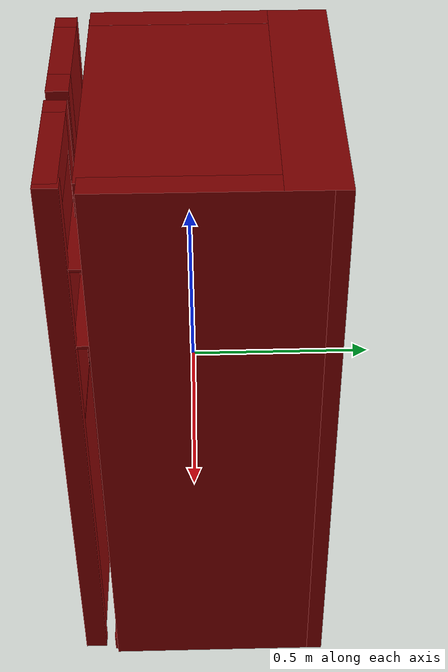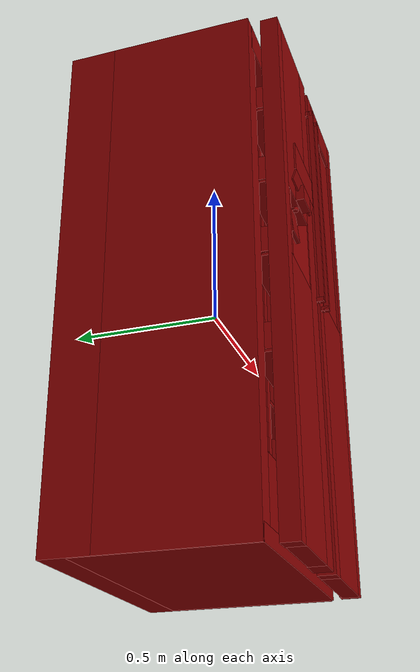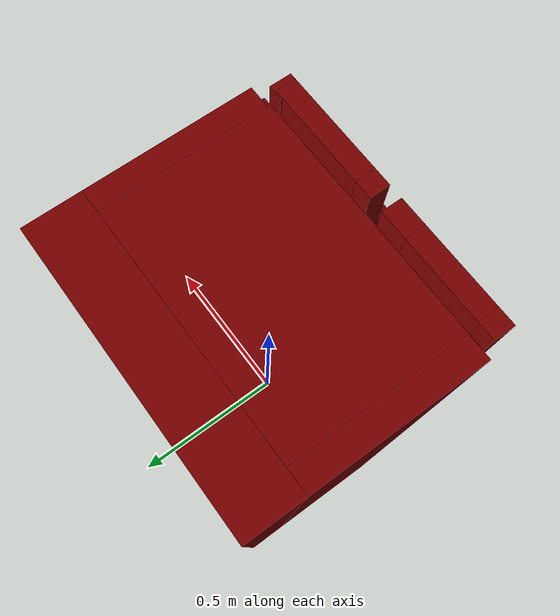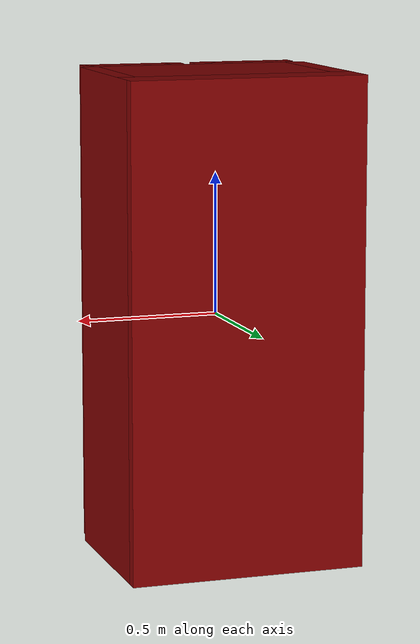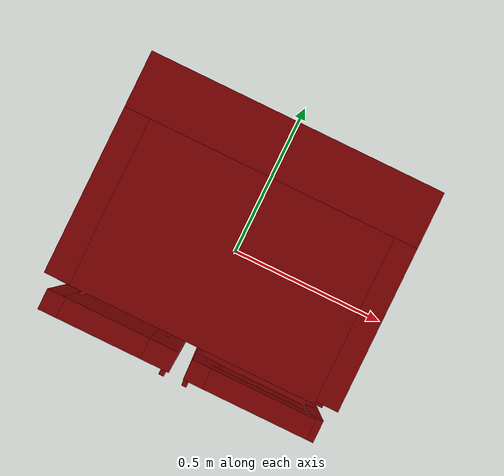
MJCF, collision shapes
<?xml version='1.0' encoding='UTF-8'?>
<mujoco model="model">
  <option timestep="0.002" gravity="0.0 0.0 -9.81"/>
  <compiler angle="radian"/>
  <asset>
    <mesh file="visuals/freezer_door.obj" name="freezer_door_vis"/>
    <mesh file="visuals/freezer_door_Clear.obj" name="freezer_door_Clear_vis"/>
    <mesh file="visuals/freezer_drawer0.obj" name="freezer_drawer0_vis"/>
    <mesh file="visuals/fridge_door.obj" name="fridge_door_vis"/>
    <mesh file="visuals/fridge_door_Clear.obj" name="fridge_door_Clear_vis"/>
    <mesh file="visuals/fridge_drawer0_Clear.obj" name="fridge_drawer0_Clear_vis"/>
    <mesh file="visuals/Body001.obj" name="Body001_vis"/>
    <mesh file="visuals/Body001_Clear.obj" name="Body001_Clear_vis"/>
    <mesh file="visuals/Handle001.obj" name="Handle001_vis"/>
    <texture file="visuals/T_BC001.png" name="Body001_material" type="2d"/>
    <material name="Body001_material" rgba="1 1 1 1.0" texture="Body001_material" shininess="0.4472135901451111" specular="0.41"/>
    <texture file="visuals/T_BC001.png" name="freezer_door_material" type="2d"/>
    <material name="freezer_door_material" rgba="1 1 1 1.0" texture="freezer_door_material" shininess="0.4472135901451111" specular="0.81"/>
    <material name="freezer_door_Clear_material" rgba="0.41474002599716187 0.41474002599716187 0.41474002599716187 0.699999988079071" shininess="0.5" specular="0.3103448502657381"/>
    <texture file="visuals/T_BC001.png" name="Handle001_material" type="2d"/>
    <material name="Handle001_material" rgba="1 1 1 1.0" texture="Handle001_material" shininess="0.4111" specular="1"/>
    <material name="fridge_drawer0_Clear_material" rgba="0.41474002599716187 0.41474002599716187 0.41474002599716187 0.699999988079071" shininess="0.5" specular="0.3103448502657381"/>
    <texture file="visuals/T_BC001.png" name="freezer_drawer0_material" type="2d"/>
    <material name="freezer_drawer0_material" rgba="1 1 1 1.0" texture="freezer_drawer0_material" shininess="0.4472135901451111" specular="0.3103448502657381"/>
    <texture file="visuals/T_BC001.png" name="fridge_door_material" type="2d"/>
    <material name="fridge_door_material" rgba="1 1 1 1.0" texture="fridge_door_material" shininess="0.4472135901451111" specular="0.81"/>
    <material name="fridge_door_Clear_material" rgba="0.41474002599716187 0.41474002599716187 0.41474002599716187 0.699999988079071" shininess="0.5" specular="0.3103448502657381"/>
    <material name="Body001_Clear_material" rgba="0.41474002599716187 0.41474002599716187 0.41474002599716187 0.699999988079071" shininess="0.5" specular="0.3103448502657381"/>
  </asset>
  <default>
    <default class="visual">
      <geom conaffinity="0" contype="0" group="1" type="mesh"/>
    </default>
    <default class="collision">
      <geom group="0" rgba="0.5 0 0 0.5"/>
    </default>
    <default class="spawn">
      <geom group="0" rgba="1 1 1 0.5" contype="0" conaffinity="0"/>
      <site group="0" rgba="1 1 1 0.5"/>
    </default>
    <default class="region">
      <geom group="1" conaffinity="0" contype="0" rgba="0 1 0 0"/>
    </default>
  </default>
  <worldbody>
    <body>
      <body name="object">
        <geom mesh="Body001_vis" type="mesh" solimp="0.998 0.998 0.001" solref="0.001 1" friction="0.95 0.3 0.1" class="visual" material="Body001_material"/>
        <geom class="collision" type="box" pos="-0.3801945149898529 0.03714057803153992 -3.230525180697441e-09" size="0.035735517740249634 0.292684406042099 0.8571875691413879" quat="1.0 0.0 0.0 0.0"/>
        <geom class="collision" type="box" pos="0.38374921679496765 0.040559086948633194 1.0099029168486595e-08" size="0.03218913823366165 0.2892673909664154 0.8571898341178894" quat="1.0 0.0 0.0 0.0"/>
        <geom class="collision" type="box" pos="-1.1801021173596382e-05 0.2952515482902527 -3.2014213502407074e-09" size="0.41595014929771423 0.07927140593528748 0.8571920990943909" quat="1.0 0.0 0.0 0.0"/>
        <geom class="collision" type="box" pos="-0.0012382620479911566 0.016881851479411125 0.8108739852905273" size="0.37610000371932983 0.2735271453857422 0.04620547592639923" quat="1.0 0.0 0.0 0.0"/>
        <geom class="collision" type="box" pos="-0.17440995573997498 0.057972297072410583 0.4543333649635315" size="0.16287076473236084 0.16558177769184113 0.006923758890479803" quat="1.0 0.0 0.0 0.0"/>
        <geom class="collision" type="box" pos="-0.001491114846430719 0.0028999578207731247 -0.04240342974662781" size="0.015597331337630749 0.1761229783296585 0.8143810629844666" quat="1.0 0.0 0.0 0.0"/>
        <geom class="collision" type="box" pos="-0.003516203723847866 0.016881829127669334 -0.8301694989204407" size="0.40684476494789124 0.2735343873500824 0.027140244841575623" quat="1.0 0.0 0.0 0.0"/>
        <geom class="collision" type="box" pos="0.18122144043445587 0.08383700996637344 -0.2676292657852173" size="0.16114282608032227 0.007333500310778618 0.03612767904996872" quat="1.0 0.0 0.0 0.0"/>
        <geom class="collision" type="box" pos="0.3820780813694 -0.03190062940120697 -0.2676292657852173" size="0.003994883969426155 0.11367939412593842 0.036125548183918" quat="1.0 0.0 0.0 0.0"/>
        <geom class="collision" type="box" pos="-0.38217926025390625 -0.03190062940120697 -0.2676292657852173" size="0.00399490213021636 0.11368034034967422 0.0361257866024971" quat="1.0 0.0 0.0 0.0"/>
        <geom class="collision" type="box" pos="0.02233295328915119 -0.03190062940120697 -0.2676292657852173" size="0.003994915634393692 0.11368104070425034 0.03612596169114113" quat="1.0 0.0 0.0 0.0"/>
        <geom class="collision" type="box" pos="-0.3789580166339874 -0.03190062940120697 -0.4345930814743042" size="0.007216035388410091 0.11368198692798615 0.08158448338508606" quat="1.0 0.0 0.0 0.0"/>
        <geom class="collision" type="box" pos="0.3772643804550171 -0.03190062940120697 -0.4304383099079132" size="0.00880821980535984 0.11368293315172195 0.09076222032308578" quat="1.0 0.0 0.0 0.0"/>
        <geom class="collision" type="box" pos="0.1780054271221161 0.057972297072410583 0.4129199683666229" size="0.1668473333120346 0.16559994220733643 0.006924326531589031" quat="1.0 0.0 0.0 0.0"/>
        <geom class="collision" type="box" pos="0.1780054271221161 0.057972297072410583 0.09163431823253632" size="0.16684775054454803 0.16560041904449463 0.006924340967088938" quat="1.0 0.0 0.0 0.0"/>
        <geom class="collision" type="box" pos="-0.17601948976516724 0.057972297072410583 0.12305711209774017" size="0.16684816777706146 0.16560088098049164 0.006924355868250132" quat="1.0 0.0 0.0 0.0"/>
        <geom class="collision" type="box" pos="-0.17601948976516724 0.057972297072410583 -0.19491110742092133" size="0.1668485701084137 0.16560134291648865 0.006924370303750038" quat="1.0 0.0 0.0 0.0"/>
        <geom class="collision" type="box" pos="-0.17601948976516724 0.057972297072410583 -0.5179890990257263" size="0.16684898734092712 0.16560181975364685 0.006924384739249945" quat="1.0 0.0 0.0 0.0"/>
        <geom class="collision" type="box" pos="0.1780054271221161 -0.004818879067897797 -0.30868032574653625" size="0.1668514609336853 0.1656046062707901 0.0069244722835719585" quat="1.0 0.0 0.0 0.0"/>
        <body name="freezer_door">
          <joint axis="0.0 0.0 -1.0" pos="-0.37913239002227783 -0.311129629611969 0.00011271238327026367" limited="true" name="freezer_door_joint" range="0.0 1.5707963267948966" type="hinge" damping="1" frictionloss="1" armature=".01" stiffness="0.05"/>
          <geom mesh="freezer_door_vis" type="mesh" solimp="0.998 0.998 0.001" solref="0.001 1" friction="0.95 0.3 0.1" class="visual" material="freezer_door_material"/>
          <geom class="collision" type="box" pos="-0.3637799322605133 -0.3178723156452179 -4.644957243726822e-06" size="0.026093820109963417 0.02897055819630623 0.8574196100234985" quat="1.0 0.0 0.0 0.0"/>
          <geom class="collision" type="box" pos="-0.058020249009132385 -0.3178723454475403 -4.545247520582052e-06" size="0.040952883660793304 0.028973646461963654 0.8575195670127869" quat="1.0 0.0 0.0 0.0"/>
          <geom class="collision" type="box" pos="-0.201767235994339 -0.31787237524986267 0.5436348915100098" size="0.1416359692811966 0.028973493725061417 0.31372979283332825" quat="1.0 0.0 0.0 0.0"/>
          <geom class="collision" type="box" pos="-0.20176735520362854 -0.3191768527030945 -0.4313064515590668" size="0.1416359394788742 0.027668824419379234 0.4261077046394348" quat="1.0 0.0 0.0 0.0"/>
          <geom class="collision" type="box" pos="-0.21049916744232178 -0.289520263671875 0.12573562562465668" size="0.09687431156635284 0.0026283112820237875 0.15400418639183044" quat="1.0 0.0 0.0 0.0"/>
          <geom class="collision" type="box" pos="-0.10186759382486343 -0.31699565052986145 0.1257355958223343" size="0.008751383051276207 0.025852853432297707 0.1540149748325348" quat="5.978950667895333e-08 -0.9848077297210693 -0.17364826798439026 9.569190950742268e-08"/>
          <geom class="collision" type="box" pos="-0.03354785591363907 -0.3616794943809509 -0.010237783193588257" size="0.007116621360182762 0.011857819743454456 0.007636724505573511" quat="1.0 0.0 0.0 0.0" name="freezer_door_handle_2"/>
          <geom class="collision" type="box" pos="-0.03324173390865326 -0.3616794943809509 0.7223271131515503" size="0.007422801572829485 0.011857821606099606 0.009034658782184124" quat="1.0 0.0 0.0 0.0" name="freezer_door_handle_1"/>
          <geom class="collision" type="box" pos="-0.033224087208509445 -0.36676377058029175 0.35558971762657166" size="0.007440386340022087 0.008210212923586369 0.37397822737693787" quat="1.0 0.0 0.0 0.0" name="freezer_door_handle_main"/>
          <geom class="collision" type="box" pos="-0.32068294286727905 -0.3180026113986969 0.12573552131652832" size="0.008751381188631058 0.026924481615424156 0.1540149450302124" quat="0.9848077297210693 -1.006560026439729e-07 -6.740105362723625e-08 -0.17364826798439026"/>
          <geom class="collision" type="box" pos="-0.1932118535041809 -0.21412567794322968 0.3201095759868622" size="0.14153681695461273 0.00447157071903348 0.04057547450065613" quat="1.0 0.0 0.0 0.0"/>
          <geom class="collision" type="box" pos="-0.3274475634098053 -0.2465827763080597 0.32012560963630676" size="0.0044717323035001755 0.03794160485267639 0.04216281697154045" quat="0.9990481734275818 3.935994286052846e-08 3.606678689038745e-08 0.04362008720636368"/>
          <geom class="collision" type="box" pos="-0.058751147240400314 -0.24590946733951569 0.32012560963630676" size="0.0044717323035001755 0.037941597402095795 0.04216281697154045" quat="0.9961947202682495 3.431528128317041e-08 4.0895347552805106e-08 -0.08715561032295227"/>
          <geom class="collision" type="box" pos="-0.19410477578639984 -0.24343930184841156 0.2734234035015106" size="0.13424493372440338 0.03696276247501373 0.004471271298825741" quat="1.0 0.0 0.0 0.0"/>
          <geom class="collision" type="box" pos="-0.21049916744232178 -0.3656257688999176 0.3469392955303192" size="0.11166238784790039 0.0026279075536876917 0.04852749779820442" quat="1.0 0.0 0.0 0.0"/>
          <geom class="collision" type="box" pos="-0.21049916744232178 -0.3592568039894104 0.25828516483306885" size="0.040849726647138596 0.014025458134710789 0.025840990245342255" quat="1.0 0.0 0.0 0.0"/>
          <geom class="collision" type="box" pos="-0.21049916744232178 -0.3605700135231018 0.2809782922267914" size="0.11166238784790039 0.002627908019348979 0.017435817047953606" quat="0.9843474626541138 0.1762387603521347 0.0 0.0"/>
          <geom class="collision" type="cylinder" pos="-0.2122420370578766 -0.33505016565322876 0.22447526454925537" size="0.009479692205786705 0.005059966817498207" quat="1.0 0.0 0.0 0.0"/>
          <geom class="collision" type="box" pos="-0.1932118535041809 -0.21412567794322968 0.5949305295944214" size="0.14153681695461273 0.00447157071903348 0.04057547450065613" quat="1.0 0.0 0.0 0.0"/>
          <geom class="collision" type="box" pos="-0.3281252086162567 -0.2465827763080597 0.5949465036392212" size="0.0044717323035001755 0.03794160485267639 0.04216281697154045" quat="0.9990481734275818 3.935994286052846e-08 3.606678689038745e-08 0.04362008720636368"/>
          <geom class="collision" type="box" pos="-0.058751147240400314 -0.24590946733951569 0.5949465036392212" size="0.0044717323035001755 0.037941597402095795 0.04216281697154045" quat="0.9961947202682495 3.431528128317041e-08 4.0895347552805106e-08 -0.08715561032295227"/>
          <geom class="collision" type="box" pos="-0.19410477578639984 -0.24343930184841156 0.5482443571090698" size="0.13424493372440338 0.03696450963616371 0.004471489693969488" quat="1.0 0.0 0.0 0.0"/>
          <geom class="collision" type="box" pos="-0.19127090275287628 -0.21412567794322968 -0.25149473547935486" size="0.14153681695461273 0.00447157071903348 0.04057547450065613" quat="1.0 0.0 0.0 0.0"/>
          <geom class="collision" type="box" pos="-0.3251919448375702 -0.2465827763080597 -0.25147876143455505" size="0.0044717323035001755 0.03794160485267639 0.04216281697154045" quat="0.9990481734275818 3.935994286052846e-08 3.606678689038745e-08 0.04362008720636368"/>
          <geom class="collision" type="box" pos="-0.058751147240400314 -0.24590946733951569 -0.25147876143455505" size="0.0044717323035001755 0.037941597402095795 0.04216281697154045" quat="0.9961947202682495 3.431528128317041e-08 4.0895347552805106e-08 -0.08715561032295227"/>
          <geom class="collision" type="box" pos="-0.19410477578639984 -0.24343930184841156 -0.2981809079647064" size="0.13424493372440338 0.0369647741317749 0.004471522755920887" quat="1.0 0.0 0.0 0.0"/>
          <geom class="collision" type="box" pos="-0.20444320142269135 -0.2935011088848114 -0.0009552054107189178" size="0.16011016070842743 0.0026279075536876917 0.8543738722801208" quat="1.0 0.0 0.0 0.0" name="freezer_door_main"/>
          <geom class="collision" type="box" pos="-0.1932118535041809 -0.21412567794322968 0.060747116804122925" size="0.14153681695461273 0.00447157071903348 0.04057547450065613" quat="1.0 0.0 0.0 0.0"/>
          <geom class="collision" type="box" pos="-0.3357105851173401 -0.2465827763080597 0.060763150453567505" size="0.0044717323035001755 0.03794160485267639 0.04216281697154045" quat="0.9990481734275818 3.935994286052846e-08 3.606678689038745e-08 0.04362008720636368"/>
          <geom class="collision" type="box" pos="-0.058751147240400314 -0.24590946733951569 0.060763150453567505" size="0.0044717323035001755 0.037941597402095795 0.04216281697154045" quat="0.9961947202682495 3.431528128317041e-08 4.0895347552805106e-08 -0.08715561032295227"/>
          <geom class="collision" type="box" pos="-0.19410477578639984 -0.24343930184841156 0.014060944318771362" size="0.13424493372440338 0.03696320205926895 0.004471326246857643" quat="1.0 0.0 0.0 0.0"/>
          <body name="freezer_door_Clear">
            <geom mesh="freezer_door_Clear_vis" type="mesh" solimp="0.998 0.998 0.001" solref="0.001 1" friction="0.95 0.3 0.1" class="visual" material="freezer_door_Clear_material"/>
            <geom class="collision" type="box" pos="-0.1932118535041809 -0.21412567794322968 0.3201095759868622" size="0.14153681695461273 0.00447157071903348 0.04057547450065613" quat="1.0 0.0 0.0 0.0"/>
            <geom class="collision" type="box" pos="-0.3274475634098053 -0.2465827763080597 0.32012560963630676" size="0.0044717323035001755 0.03794160485267639 0.04216281697154045" quat="0.9990481734275818 3.935994286052846e-08 3.606678689038745e-08 0.04362008720636368"/>
            <geom class="collision" type="box" pos="-0.058751147240400314 -0.24590946733951569 0.32012560963630676" size="0.0044717323035001755 0.037941597402095795 0.04216281697154045" quat="0.9961947202682495 3.431528128317041e-08 4.0895347552805106e-08 -0.08715561032295227"/>
            <geom class="collision" type="box" pos="-0.19410477578639984 -0.24343930184841156 0.2734234035015106" size="0.13424493372440338 0.03696276247501373 0.004471271298825741" quat="1.0 0.0 0.0 0.0"/>
            <geom class="collision" type="box" pos="-0.1932118535041809 -0.21412567794322968 0.5949305295944214" size="0.14153681695461273 0.00447157071903348 0.04057547450065613" quat="1.0 0.0 0.0 0.0"/>
            <geom class="collision" type="box" pos="-0.3281252086162567 -0.2465827763080597 0.5949465036392212" size="0.0044717323035001755 0.03794160485267639 0.04216281697154045" quat="0.9990481734275818 3.935994286052846e-08 3.606678689038745e-08 0.04362008720636368"/>
            <geom class="collision" type="box" pos="-0.058751147240400314 -0.24590946733951569 0.5949465036392212" size="0.0044717323035001755 0.037941597402095795 0.04216281697154045" quat="0.9961947202682495 3.431528128317041e-08 4.0895347552805106e-08 -0.08715561032295227"/>
            <geom class="collision" type="box" pos="-0.19410477578639984 -0.24343930184841156 0.5482443571090698" size="0.13424493372440338 0.03696450963616371 0.004471489693969488" quat="1.0 0.0 0.0 0.0"/>
            <geom class="collision" type="box" pos="-0.19127090275287628 -0.21412567794322968 -0.25149473547935486" size="0.14153681695461273 0.00447157071903348 0.04057547450065613" quat="1.0 0.0 0.0 0.0"/>
            <geom class="collision" type="box" pos="-0.3251919448375702 -0.2465827763080597 -0.25147876143455505" size="0.0044717323035001755 0.03794160485267639 0.04216281697154045" quat="0.9990481734275818 3.935994286052846e-08 3.606678689038745e-08 0.04362008720636368"/>
            <geom class="collision" type="box" pos="-0.058751147240400314 -0.24590946733951569 -0.25147876143455505" size="0.0044717323035001755 0.037941597402095795 0.04216281697154045" quat="0.9961947202682495 3.431528128317041e-08 4.0895347552805106e-08 -0.08715561032295227"/>
            <geom class="collision" type="box" pos="-0.19410477578639984 -0.24343930184841156 -0.2981809079647064" size="0.13424493372440338 0.0369647741317749 0.004471522755920887" quat="1.0 0.0 0.0 0.0"/>
            <geom class="collision" type="box" pos="-0.1932118535041809 -0.21412567794322968 0.060747116804122925" size="0.14153681695461273 0.00447157071903348 0.04057547450065613" quat="1.0 0.0 0.0 0.0"/>
            <geom class="collision" type="box" pos="-0.3357105851173401 -0.2465827763080597 0.060763150453567505" size="0.0044717323035001755 0.03794160485267639 0.04216281697154045" quat="0.9990481734275818 3.935994286052846e-08 3.606678689038745e-08 0.04362008720636368"/>
            <geom class="collision" type="box" pos="-0.058751147240400314 -0.24590946733951569 0.060763150453567505" size="0.0044717323035001755 0.037941597402095795 0.04216281697154045" quat="0.9961947202682495 3.431528128317041e-08 4.0895347552805106e-08 -0.08715561032295227"/>
            <geom class="collision" type="box" pos="-0.19410477578639984 -0.24343930184841156 0.014060944318771362" size="0.13424493372440338 0.03696320205926895 0.004471326246857643" quat="1.0 0.0 0.0 0.0"/>
          </body>
          <body name="Handle001">
            <joint axis="1.0 0.0 0.0" pos="-0.21227864921092987 -0.3191654682159424 0.23152491450309753" limited="true" name="Handle001_joint" range="0.0 0.17453292519943295" type="hinge" damping="1" frictionloss="1" armature=".01" stiffness="0.05"/>
            <geom mesh="Handle001_vis" type="mesh" solimp="0.998 0.998 0.001" solref="0.001 1" friction="0.95 0.3 0.1" class="visual" material="Handle001_material"/>
            <geom class="collision" type="box" pos="-0.21049916744232178 -0.32436349987983704 0.1745854616165161" size="0.0395553819835186 0.006190866231918335 0.048885319381952286" quat="0.9989607930183411 -0.04557826742529869 -0.0 0.0"/>
          </body>
        </body>
        <body name="fridge_drawer0_Clear">
          <geom class="region" name="reg_fridge_drawer0" type="box" pos="0.17965534515678883 -0.0006093159317970276 -0.6658397316932678" size="0.14577583579719067 0.17597985810041428 0.11383522844314575"/>
          <joint axis="0.0 -1.0 0.0" pos="0.18224990367889404 -0.0026664063334465027 -0.6739355325698853" limited="true" name="fridge_drawer0_Clear_joint" range="0.0 0.4" type="slide" damping="1" frictionloss="1" armature=".01" stiffness="0.05"/>
          <geom mesh="fridge_drawer0_Clear_vis" type="mesh" solimp="0.998 0.998 0.001" solref="0.001 1" friction="0.95 0.3 0.1" class="visual" material="fridge_drawer0_Clear_material"/>
          <geom class="collision" type="box" pos="0.181096613407135 0.19208529591560364 -0.6713447570800781" size="0.15466763079166412 0.004668667912483215 0.12290620058774948" quat="0.9993630051612854 -0.035687901079654694 7.924386959535555e-18 1.6089723379871277e-24"/>
          <geom class="collision" type="box" pos="0.026442985981702805 -0.0019667595624923706 -0.6720328330993652" size="0.0029787947423756123 0.19798904657363892 0.12220825999975204" quat="1.0 0.0 0.0 0.0"/>
          <geom class="collision" type="box" pos="0.18016836047172546 -0.19750571250915527 -0.6736435890197754" size="0.008033338002860546 0.15466763079166412 0.12565748393535614" quat="0.7064337730407715 0.03084353357553482 0.030843520537018776 -0.7064337730407715"/>
          <geom class="collision" type="box" pos="0.181096613407135 -0.0021244073286652565 -0.7931268215179443" size="0.15466764569282532 0.1884990632534027 0.006600694730877876" quat="1.0 0.0 0.0 0.0"/>
          <geom class="collision" type="box" pos="0.33317628502845764 -0.0008981227874755859 -0.6717687845230103" size="0.002088232198730111 0.2001560777425766 0.12245085090398788" quat="1.0 0.0 0.0 0.0"/>
        </body>
        <body name="freezer_drawer0">
          <geom class="region" name="reg_freezer_drawer0" type="box" pos="-0.17834788002073765 -0.003294803202152252 -0.6661747395992279" size="0.1434842830747366 0.17658454722166061 0.11487059092521668"/>
          <joint axis="0.0 -1.0 0.0" pos="-0.18010088801383972 -0.003710433840751648 -0.6739355325698853" limited="true" name="freezer_drawer0_joint" range="0.0 0.4" type="slide" damping="1" frictionloss="1" armature=".01" stiffness="0.05"/>
          <geom mesh="freezer_drawer0_vis" type="mesh" solimp="0.998 0.998 0.001" solref="0.001 1" friction="0.95 0.3 0.1" class="visual" material="freezer_drawer0_material"/>
          <geom class="collision" type="box" pos="-0.0263947956264019 0.0004640929400920868 -0.6716325283050537" size="0.0025032791309058666 0.1943877935409546 0.12257649749517441" quat="1.0 0.0 0.0 0.0"/>
          <geom class="collision" type="box" pos="-0.18498799204826355 -0.0035164300352334976 -0.7931268215179443" size="0.1476873755455017 0.1884990632534027 0.006600691471248865" quat="1.0 0.0 0.0 0.0"/>
          <geom class="collision" type="box" pos="-0.1797444075345993 -0.19903026521205902 -0.6743975877761841" size="0.008531502448022366 0.14768734574317932 0.1249077096581459" quat="0.7064337730407715 0.030843520537018776 0.030843501910567284 -0.7064337730407715"/>
          <geom class="collision" type="box" pos="-0.3286738097667694 -0.005953514948487282 -0.6712871789932251" size="0.0017044241540133953 0.1965075135231018 0.12294085323810577" quat="1.0 0.0 0.0 0.0"/>
          <geom class="collision" type="box" pos="-0.18498799204826355 0.1923104077577591 -0.6713608503341675" size="0.14768728613853455 0.004717339761555195 0.12290552258491516" quat="0.9993630051612854 -0.035687901079654694 7.924386959535555e-18 1.6089723379871277e-24"/>
        </body>
        <body name="fridge_door">
          <joint axis="0.0 0.0 1.0" pos="0.36411282420158386 -0.30992037057876587 0.00013592839241027832" limited="true" name="fridge_door_joint" range="0.0 1.5707963267948966" type="hinge" damping="1" frictionloss="1" armature=".01" stiffness="0.05"/>
          <geom mesh="fridge_door_vis" type="mesh" solimp="0.998 0.998 0.001" solref="0.001 1" friction="0.95 0.3 0.1" class="visual" material="fridge_door_material"/>
          <geom class="collision" type="box" pos="0.21107126772403717 -0.28766950964927673 0.6105823516845703" size="0.16717509925365448 0.036958709359169006 0.00447076465934515" quat="1.0 0.0 0.0 0.0"/>
          <geom class="collision" type="box" pos="0.21638233959674835 -0.3154853582382202 0.6317541599273682" size="0.17248615622520447 0.0044708335772156715 0.015058677643537521" quat="1.0 0.0 0.0 0.0"/>
          <geom class="collision" type="box" pos="0.21107125282287598 -0.28759223222732544 0.36789071559906006" size="0.16717509925365448 0.036959100514650345 0.004470813553780317" quat="1.0 0.0 0.0 0.0"/>
          <geom class="collision" type="box" pos="0.21638232469558716 -0.3154853582382202 0.3890624940395355" size="0.17248615622520447 0.004470882471650839 0.015058874152600765" quat="1.0 0.0 0.0 0.0"/>
          <geom class="collision" type="box" pos="0.3716951012611389 -0.31598326563835144 -2.3632310330867767e-08" size="0.02119011990725994 0.030856389552354813 0.8573130369186401" quat="1.0 0.0 0.0 0.0"/>
          <geom class="collision" type="box" pos="0.05885697156190872 -0.31830477714538574 -2.8405338525772095e-08" size="0.03553950414061546 0.028534872457385063 0.8573130369186401" quat="1.0 0.0 0.0 0.0"/>
          <geom class="collision" type="box" pos="0.22578296065330505 -0.31830474734306335 0.8090223670005798" size="0.14912791550159454 0.028534894809126854 0.048290934413671494" quat="1.0 0.0 0.0 0.0"/>
          <geom class="collision" type="box" pos="0.22578296065330505 -0.31830477714538574 -0.4050332009792328" size="0.14912794530391693 0.028534889221191406 0.45228004455566406" quat="1.0 0.0 0.0 0.0"/>
          <geom class="collision" type="box" pos="0.033434636890888214 -0.36676377058029175 0.35558968782424927" size="0.007116577122360468 0.008210202679038048 0.3739778995513916" quat="1.0 0.0 0.0 0.0" name="fridge_door_handle_main"/>
          <geom class="collision" type="box" pos="0.033434610813856125 -0.3616794943809509 0.721796989440918" size="0.007116617169231176 0.011857815086841583 0.008504430763423443" quat="1.0 0.0 0.0 0.0" name="fridge_door_handle_1"/>
          <geom class="collision" type="box" pos="0.0334346629679203 -0.3616794943809509 -0.010237778536975384" size="0.007116619497537613 0.011857816949486732 0.007636722177267075" quat="1.0 0.0 0.0 0.0" name="fridge_door_handle_2"/>
          <geom class="collision" type="box" pos="0.22578303515911102 -0.33625972270965576 0.40482351183891296" size="0.14912797510623932 0.0027983826585114002 0.3483201265335083" quat="1.0 0.0 0.0 0.0"/>
          <geom class="collision" type="box" pos="0.2217985838651657 -0.2935011088848114 -0.0009552054107189178" size="0.16011016070842743 0.0026279075536876917 0.8543738722801208" quat="1.0 0.0 0.0 0.0" name="fridge_door_main"/>
          <body name="fridge_door_Clear">
            <geom mesh="fridge_door_Clear_vis" type="mesh" solimp="0.998 0.998 0.001" solref="0.001 1" friction="0.95 0.3 0.1" class="visual" material="fridge_door_Clear_material"/>
            <geom class="collision" type="box" pos="0.22578303515911102 -0.33625972270965576 0.40482351183891296" size="0.14912797510623932 0.0027983826585114002 0.3483201265335083" quat="1.0 0.0 0.0 0.0"/>
          </body>
        </body>
        <body name="Body001_Clear">
          <geom mesh="Body001_Clear_vis" type="mesh" solimp="0.998 0.998 0.001" solref="0.001 1" friction="0.95 0.3 0.1" class="visual" material="Body001_Clear_material"/>
        </body>
        <geom class="region" name="reg_freezer_shelf0" type="box" pos="-0.17669885978102684 0.05498216301202774 -0.35771533101797104" size="0.15354882350564003 0.1550602520108223 0.14977764135599136"/>
        <geom class="region" name="reg_freezer_shelf1" type="box" pos="-0.17599720414727926 0.0557209849357605 -0.03681237995624542" size="0.15296379367262125 0.1543794105052948 0.14884955978393555"/>
        <geom class="region" name="reg_freezer_shelf2" type="box" pos="-0.17780007421970367 0.05538356304168701 0.28910114616155624" size="0.15453865921497345 0.1541810611486435 0.1550432646870613"/>
        <geom class="region" name="reg_freezer_shelf3" type="box" pos="-0.17684177681803703 0.0558609664440155 0.6154071241617203" size="0.15363782814145088 0.1541548798084259 0.14893257415294647"/>
        <geom class="region" name="reg_fridge_shelf0" type="box" pos="0.18527883850038052 -0.04022177308797836 -0.10970155149698257" size="0.1531147433668375 0.10988516157865524 0.18815628236532211"/>
        <geom class="region" name="reg_fridge_shelf1" type="box" pos="0.17806282546371222 0.05851225554943085 0.25049933046102524" size="0.15981010983139277 0.15560321307182312 0.1496075296998024"/>
        <geom class="region" name="reg_fridge_shelf2" type="box" pos="0.17828675638884306 0.05765016749501228 0.5918010771274567" size="0.1587683435752988 0.15597411414980888 0.16694961285591126"/>
        <geom class="region" name="reg_main" type="box" pos="4.1637067624833435e-06 0.013849209062755108 -2.9802322387695312e-08" size="0.41693417525291443 0.36168883538246155 0.8583131561279297"/>
      </body>
    </body>
  </worldbody>
  <actuator>
    <motor name="freezer_door_joint_actuator" joint="freezer_door_joint" gear="50"/>
    <motor name="fridge_drawer0_Clear_joint_actuator" joint="fridge_drawer0_Clear_joint" gear="50"/>
    <motor name="freezer_drawer0_joint_actuator" joint="freezer_drawer0_joint" gear="50"/>
    <motor name="fridge_door_joint_actuator" joint="fridge_door_joint" gear="50"/>
    <motor name="Handle001_joint_actuator" joint="Handle001_joint" gear="50"/>
  </actuator>
</mujoco>
